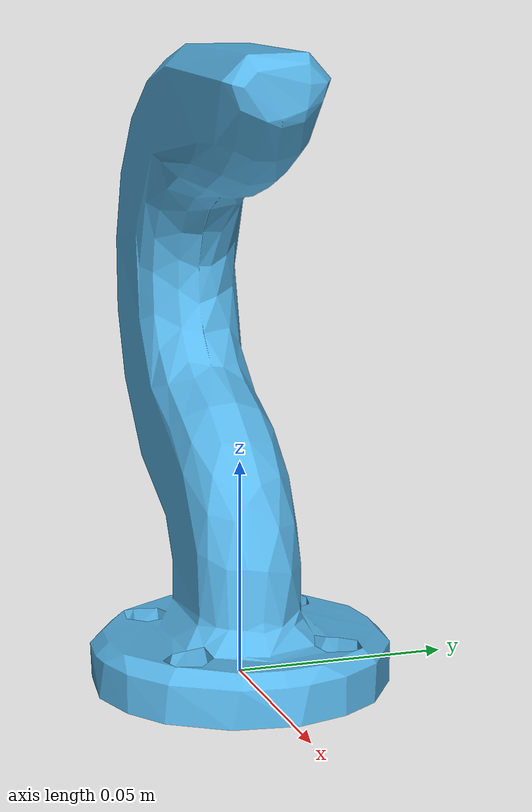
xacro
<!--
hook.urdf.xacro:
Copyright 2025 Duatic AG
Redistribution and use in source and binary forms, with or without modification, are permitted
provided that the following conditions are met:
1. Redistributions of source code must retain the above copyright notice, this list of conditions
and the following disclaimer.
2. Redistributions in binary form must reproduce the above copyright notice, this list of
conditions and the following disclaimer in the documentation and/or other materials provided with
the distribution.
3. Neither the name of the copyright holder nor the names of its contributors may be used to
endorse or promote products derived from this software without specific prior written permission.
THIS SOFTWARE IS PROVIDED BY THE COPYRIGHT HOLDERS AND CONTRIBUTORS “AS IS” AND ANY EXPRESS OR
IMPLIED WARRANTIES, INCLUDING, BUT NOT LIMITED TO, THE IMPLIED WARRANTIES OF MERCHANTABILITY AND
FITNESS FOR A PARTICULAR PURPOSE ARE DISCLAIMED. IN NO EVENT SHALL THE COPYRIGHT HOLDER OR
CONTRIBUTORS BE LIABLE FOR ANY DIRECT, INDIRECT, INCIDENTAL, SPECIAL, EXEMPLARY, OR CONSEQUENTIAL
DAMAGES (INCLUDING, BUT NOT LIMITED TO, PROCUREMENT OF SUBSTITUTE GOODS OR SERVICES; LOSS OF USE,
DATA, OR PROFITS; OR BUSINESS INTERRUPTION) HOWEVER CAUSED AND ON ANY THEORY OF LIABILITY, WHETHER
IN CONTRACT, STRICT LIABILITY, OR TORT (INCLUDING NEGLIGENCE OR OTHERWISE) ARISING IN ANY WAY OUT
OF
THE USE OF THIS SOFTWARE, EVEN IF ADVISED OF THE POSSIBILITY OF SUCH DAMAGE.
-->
<robot name="hook_on_world" xmlns:xacro="http://www.ros.org/wiki/xacro">

  <xacro:arg name="tf_prefix" default="" />

  <xacro:include filename="$(find dynaarm_end_effectors)/urdf/hook.urdf.xacro" />

  <link name="base_link" />

  <!-- Add platform to world -->
  <xacro:hook tf_prefix="$(arg tf_prefix)"
              parent="base_link">
    <origin xyz="0 0 0.0" rpy="0 0 0" />
  </xacro:hook>

</robot>

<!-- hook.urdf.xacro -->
<robot name="hook" xmlns:xacro="http://www.ros.org/wiki/xacro">

  <!-- Link Definition -->
<xacro:macro name="hook" params="tf_prefix parent *origin">

  <link name="${tf_prefix}hook_link">

    <!-- Inertial Properties -->
    <inertial>
      <origin xyz="0.004832 -0.001237 0.033429" rpy="0 0 0"/>
      <mass value="0.157"/>
      <inertia
        ixx="0.001677" ixy="0.0"  ixz="-0.000509"
        iyy="0.001510" iyz="0.0"
        izz="0.001501"/>
    </inertial>

    <!-- Visual -->
    <visual>
      <origin xyz="0 0 0" rpy="0 0 0"/>
      <geometry>
      <mesh filename="file://$(find dynaarm_end_effectors)/meshes/hook.dae" scale="1 1 1"/>
      </geometry>
    </visual>

    <collision>
      <origin xyz="0 0 0" rpy="0 0 0"/>
      <geometry>
      <mesh filename="file://$(find dynaarm_end_effectors)/meshes/hook.dae" scale="1 1 1"/>
      </geometry>
    </collision>
  </link>

  <!-- Fixed Joint to parent link -->
  <joint name="${tf_prefix}hook_joint" type="fixed">
    <parent link="${parent}"/>
    <child link="${tf_prefix}hook_link"/>
    <xacro:insert_block name="origin" />
  </joint>

</xacro:macro>

</robot>
